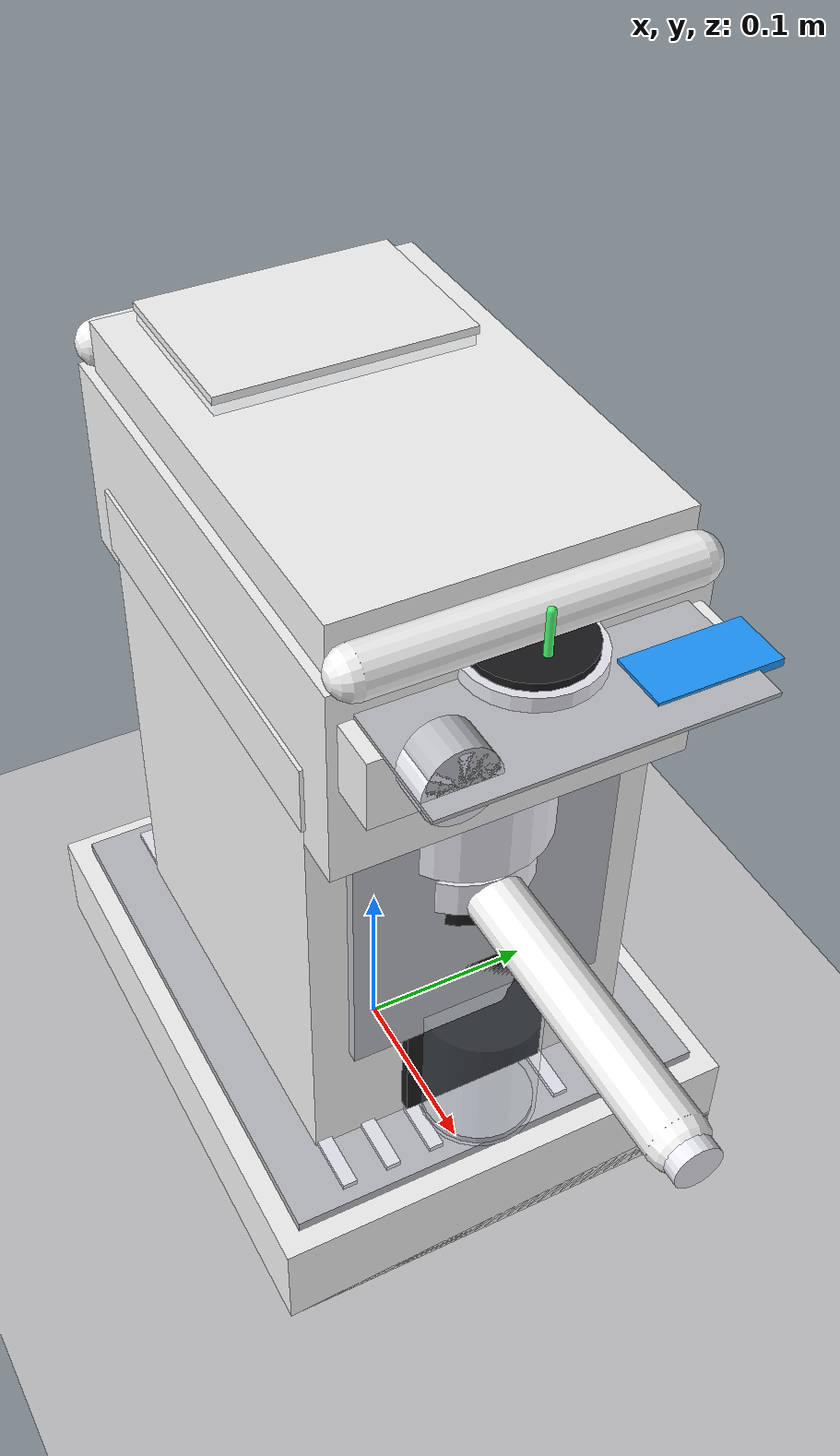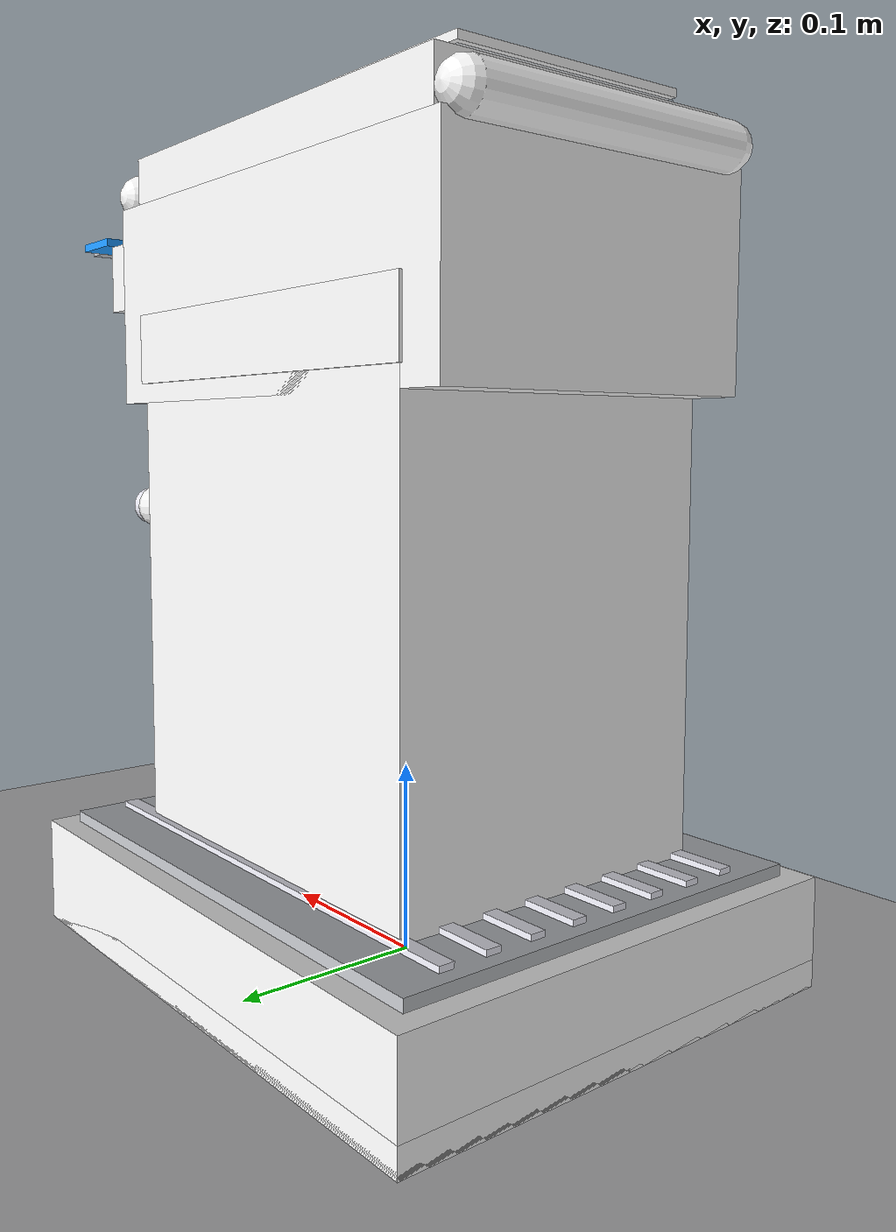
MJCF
<mujoco model="coffee_machine_hifi">

  <compiler angle="degree" coordinate="local" inertiafromgeom="true" autolimits="true"/>
  <option timestep="0.002" gravity="0 0 -9.81" integrator="RK4"/>

  <visual>
    <headlight ambient="0.14 0.14 0.16" diffuse="0.20 0.20 0.22" specular="0.10 0.10 0.10"/>
    <rgba haze="0.92 0.94 0.97 1"/>
    <global offwidth="2560" offheight="1440" fovy="42"/>
    <quality shadowsize="4096" offsamples="8"/>
    <map znear="0.01" zfar="20" shadowscale="0.4"/>
  </visual>

  <statistic extent="1.0" center="0 0 0.18"/>

  <asset>
    <texture name="tex_sky" type="skybox" builtin="gradient" rgb1="0.88 0.92 0.98" rgb2="0.22 0.28 0.38" width="2048" height="2048"/>
    <texture name="tex_floor" type="2d" builtin="checker" rgb1="0.80 0.80 0.81" rgb2="0.72 0.72 0.73" width="1024" height="1024" mark="edge" markrgb="0.55 0.55 0.56"/>
    <texture name="tex_brushed" type="2d" builtin="checker" rgb1="0.76 0.77 0.79" rgb2="0.70 0.71 0.73" width="2048" height="2048" mark="random" markrgb="0.62 0.63 0.65"/>
    <texture name="tex_white_plastic" type="2d" builtin="flat" rgb1="0.965 0.965 0.965" width="1024" height="1024"/>
    <texture name="tex_dark_plastic" type="2d" builtin="flat" rgb1="0.10 0.10 0.11" width="1024" height="1024"/>
    <texture name="tex_rubber" type="2d" builtin="checker" rgb1="0.08 0.08 0.08" rgb2="0.06 0.06 0.06" width="1024" height="1024" mark="random" markrgb="0.05 0.05 0.05"/>

    <material name="mat_floor" texture="tex_floor" texrepeat="8 8" reflectance="0.10" shininess="0.35" specular="0.15"/>
    <material name="mat_plastic_white" texture="tex_white_plastic" reflectance="0.22" shininess="0.55" specular="0.35"/>
    <material name="mat_plastic_dark" texture="tex_dark_plastic" reflectance="0.10" shininess="0.45" specular="0.25"/>
    <material name="mat_brushed_steel" texture="tex_brushed" texrepeat="6 6" reflectance="0.30" shininess="0.95" specular="0.85"/>
    <material name="mat_chrome" rgba="0.92 0.92 0.96 1" reflectance="0.80" shininess="1.0" specular="1.0"/>
    <material name="mat_rubber" texture="tex_rubber" texrepeat="6 6" reflectance="0.05" shininess="0.20" specular="0.08"/>
    <material name="mat_glass" rgba="0.80 0.88 0.95 0.18" reflectance="0.90" shininess="1.0" specular="0.90"/>
    <material name="mat_water" rgba="0.65 0.82 1.0 0.25" reflectance="0.95" shininess="1.0" specular="0.85"/>
    <material name="mat_display" rgba="0.12 0.60 1.0 1" emission="2.5" reflectance="0.02" shininess="0.9" specular="0.4"/>
    <material name="mat_indicator" rgba="0.30 1.0 0.45 1" emission="1.2" reflectance="0.0"/>
    <material name="mat_espresso" rgba="0.32 0.19 0.10 0.55" reflectance="0.0" shininess="0.0" specular="0.0"/>
  </asset>

  <default>
    <geom contype="1" conaffinity="1" friction="0.9 0.01 0.001" solimp="0.95 0.99 0.01" solref="0.02 1"/>
    <default class="visual">
      <geom contype="0" conaffinity="0" group="2"/>
    </default>
  </default>

  <worldbody>
    <light name="key" pos="1.8 -2.0 2.2" dir="-0.7 0.8 -1" diffuse="0.95 0.92 0.88" specular="0.25 0.25 0.25" castshadow="true" cutoff="45"/>
    <light name="fill" pos="-1.6 1.3 1.6" dir="0.6 -0.4 -1" diffuse="0.25 0.28 0.35" specular="0.02 0.02 0.02" castshadow="false" cutoff="90"/>
    <light name="bounce" pos="0 0 1.0" dir="0 0 -1" diffuse="0.10 0.10 0.09" specular="0 0 0" attenuation="0.4 0 0.04" castshadow="false" cutoff="120"/>

    <camera name="main" pos="0.62 -0.85 0.48" xyaxes="0.80 0.60 0  -0.25 0.33 0.91"/>

    <geom name="floor" type="plane" pos="0 0 0" size="2 2 0.1" material="mat_floor"/>

    <!-- Espresso machine overall dimensions (approx.): W=0.23m, D=0.32m, H=0.35m -->
    <body name="coffee_machine" pos="0 0 0">
      <body name="sim_state" pos="0 0 0.001">
        <body name="var_tank_level" pos="-0.07 0 0.33">
          <joint name="tank_level" type="slide" axis="0 0 1" range="0 0.08"/>
          <geom class="visual" type="box" size="0.042 0.062 0.002" pos="0 0 0" material="mat_water"/>
        </body>

        <body name="var_boiler_temp" pos="0 0 0">
          <joint name="boiler_temp" type="slide" axis="0 0 1" range="0 1"/>
          <geom class="visual" type="sphere" size="0.001" rgba="0 0 0 0"/>
        </body>

        <body name="var_pump_pressure" pos="0 0 0">
          <joint name="pump_pressure" type="slide" axis="0 0 1" range="0 1"/>
          <geom class="visual" type="sphere" size="0.001" rgba="0 0 0 0"/>
        </body>

        <body name="var_water_flow" pos="0 0 0">
          <joint name="water_flow" type="slide" axis="0 0 1" range="0 1"/>
          <geom class="visual" type="sphere" size="0.001" rgba="0 0 0 0"/>
        </body>

        <body name="var_cup_level" pos="0.12 0 0.072">
          <joint name="cup_level" type="slide" axis="0 0 1" range="0 0.035"/>
          <geom class="visual" type="cylinder" size="0.028 0.001" pos="0 0 0.0" material="mat_espresso"/>
        </body>
      </body>

      <body name="base" pos="0 0 0.0">
        <geom name="base_shell" type="box" size="0.16 0.13 0.028" pos="0 0 0.028" material="mat_plastic_white"/>
        <geom name="base_front_lip" type="box" size="0.16 0.13 0.007" pos="0 0 0.007" material="mat_plastic_white"/>
        <geom name="tray_top" type="box" size="0.148 0.118 0.004" pos="0 0 0.058" material="mat_brushed_steel"/>
        <geom class="visual" type="box" size="0.14 0.11 0.018" pos="0 0 0.038" material="mat_plastic_dark"/>

        <geom class="visual" type="box" size="0.14 0.004 0.003" pos="0 0.09 0.062" material="mat_chrome"/>
        <geom class="visual" type="box" size="0.14 0.004 0.003" pos="0 0.065 0.062" material="mat_chrome"/>
        <geom class="visual" type="box" size="0.14 0.004 0.003" pos="0 0.040 0.062" material="mat_chrome"/>
        <geom class="visual" type="box" size="0.14 0.004 0.003" pos="0 0.015 0.062" material="mat_chrome"/>
        <geom class="visual" type="box" size="0.14 0.004 0.003" pos="0 -0.010 0.062" material="mat_chrome"/>
        <geom class="visual" type="box" size="0.14 0.004 0.003" pos="0 -0.035 0.062" material="mat_chrome"/>
        <geom class="visual" type="box" size="0.14 0.004 0.003" pos="0 -0.060 0.062" material="mat_chrome"/>
        <geom class="visual" type="box" size="0.14 0.004 0.003" pos="0 -0.085 0.062" material="mat_chrome"/>

        <geom name="foot_fl" type="cylinder" size="0.018 0.006" pos="0.12 0.09 0.006" material="mat_rubber"/>
        <geom name="foot_fr" type="cylinder" size="0.018 0.006" pos="0.12 -0.09 0.006" material="mat_rubber"/>
        <geom name="foot_bl" type="cylinder" size="0.018 0.006" pos="-0.12 0.09 0.006" material="mat_rubber"/>
        <geom name="foot_br" type="cylinder" size="0.018 0.006" pos="-0.12 -0.09 0.006" material="mat_rubber"/>
      </body>

      <body name="column" pos="0 0 0.06">
        <geom name="column_shell" type="box" size="0.11 0.09 0.125" pos="0 0 0.125" material="mat_plastic_white"/>
        <geom class="visual" type="box" size="0.112 0.092 0.018" pos="0 0 0.258" material="mat_plastic_white"/>
        <geom class="visual" type="box" size="0.098 0.078 0.018" pos="0 0 0.278" material="mat_plastic_white"/>

        <geom class="visual" type="box" size="0.003 0.070 0.085" pos="0.113 0 0.155" material="mat_brushed_steel"/>
        <geom class="visual" type="box" size="0.003 0.040 0.050" pos="0.113 0 0.060" material="mat_plastic_dark"/>
        <geom class="visual" type="box" size="0.002 0.075 0.095" pos="0.108 0 0.145" material="mat_plastic_dark"/>
        <geom class="visual" type="box" size="0.010 0.075 0.002" pos="0.100 0 0.235" material="mat_chrome"/>

        <body name="boiler" pos="-0.02 0 0.15">
          <geom class="visual" type="cylinder" size="0.035 0.055" pos="0 0 0" material="mat_brushed_steel"/>
          <geom class="visual" type="cylinder" size="0.028 0.05" pos="0 0 0.01" material="mat_chrome"/>
        </body>

        <body name="pump" pos="0.05 0 0.05">
          <geom class="visual" type="cylinder" size="0.022 0.03" pos="0 0 0" material="mat_plastic_dark"/>
          <geom class="visual" type="capsule" size="0.015 0.02" pos="0 0 0.03" material="mat_brushed_steel"/>
        </body>
      </body>

      <body name="head_unit" pos="0 0 0.30">
        <geom name="head_shell" type="box" size="0.135 0.09 0.052" pos="0 0 0.042" material="mat_plastic_white"/>
        <geom class="visual" type="box" size="0.125 0.085 0.018" pos="0 0 0.102" material="mat_plastic_white"/>
        <geom class="visual" type="capsule" size="0.012 0.078" fromto="0.135 0.078 0.102  0.135 -0.078 0.102" material="mat_plastic_white"/>
        <geom class="visual" type="capsule" size="0.012 0.078" fromto="-0.135 0.078 0.102  -0.135 -0.078 0.102" material="mat_plastic_white"/>

        <body name="water_tank" pos="-0.07 0 0.07">
          <geom class="visual" type="box" size="0.045 0.065 0.055" pos="0 0 0" material="mat_glass"/>
          <geom class="visual" type="box" size="0.046 0.066 0.002" pos="0 0 0.058" material="mat_plastic_white"/>
        </body>

        <body name="control_panel" pos="0.06 0 0.06">
          <geom name="panel_face" type="box" size="0.065 0.085 0.018" pos="0.035 0 0.0" material="mat_plastic_white"/>
          <geom class="visual" type="box" size="0.058 0.078 0.001" pos="0.082 0 0.0195" material="mat_brushed_steel"/>

          <body name="pressure_gauge" pos="0.078 0 0.02">
            <geom class="visual" type="cylinder" size="0.032 0.008" pos="0 0 0" material="mat_chrome"/>
            <geom class="visual" type="cylinder" size="0.028 0.003" pos="0 0 0.009" material="mat_plastic_dark"/>
            <body name="gauge_needle" pos="0 0 0.012">
              <joint name="pressure_needle" type="hinge" axis="0 0 1" range="0 270"/>
              <geom class="visual" type="capsule" size="0.002 0.022" pos="0.012 0 0" material="mat_indicator"/>
              <geom class="visual" type="sphere" size="0.004" pos="0 0 0" material="mat_chrome"/>
            </body>
          </body>

          <body name="power_button" pos="0.03 0.035 0.02">
            <joint name="power_btn" type="slide" axis="1 0 0" range="0 0.004"/>
            <geom class="visual" type="cylinder" size="0.010 0.006" pos="0.0 0 0" euler="0 90 0" material="mat_chrome"/>
            <geom class="visual" type="cylinder" size="0.007 0.002" pos="0.004 0 0" euler="0 90 0" material="mat_indicator"/>
          </body>

          <body name="brew_button" pos="0.03 -0.035 0.02">
            <joint name="brew_btn" type="slide" axis="1 0 0" range="0 0.004"/>
            <geom class="visual" type="cylinder" size="0.010 0.006" pos="0.0 0 0" euler="0 90 0" material="mat_chrome"/>
            <geom class="visual" type="cylinder" size="0.007 0.002" pos="0.004 0 0" euler="0 90 0" material="mat_display"/>
          </body>

          <body name="steam_knob" pos="0.12 -0.06 0.02">
            <joint name="steam_knob_angle" type="hinge" axis="1 0 0" range="0 120"/>
            <geom class="visual" type="cylinder" size="0.018 0.010" pos="0 0 0" euler="0 90 0" material="mat_chrome"/>
            <geom class="visual" type="cylinder" size="0.016 0.010" pos="0 0 0.004" euler="0 90 0" material="mat_brushed_steel"/>
          </body>

          <body name="status_display" pos="0.11 0.06 0.02">
            <geom class="visual" type="box" size="0.015 0.030 0.002" pos="0 0 0" material="mat_display"/>
          </body>
        </body>

        <body name="group_head" pos="0.09 0 0.0">
          <geom class="visual" type="cylinder" size="0.045 0.020" pos="0 0 -0.03" material="mat_chrome"/>
          <geom class="visual" type="cylinder" size="0.035 0.010" pos="0 0 -0.055" material="mat_brushed_steel"/>
          <geom class="visual" type="capsule" size="0.004 0.016" pos="0.012 0.012 -0.08" euler="0 90 0" material="mat_chrome"/>
          <geom class="visual" type="capsule" size="0.004 0.016" pos="0.012 -0.012 -0.08" euler="0 90 0" material="mat_chrome"/>

          <body name="portafilter" pos="0 0 -0.07">
            <joint name="portafilter_lock" type="hinge" axis="0 0 1" range="-60 60"/>
            <geom class="visual" type="cylinder" size="0.038 0.010" pos="0 0 0" material="mat_chrome"/>
            <geom class="visual" type="cylinder" size="0.034 0.010" pos="0 0 -0.012" material="mat_plastic_dark"/>
            <body name="portafilter_handle" pos="0.10 0 -0.005">
              <geom class="visual" type="capsule" size="0.015 0.085" pos="0 0 0" euler="0 90 0" material="mat_plastic_white"/>
              <geom class="visual" type="cylinder" size="0.012 0.006" pos="0.095 0 0" euler="0 90 0" material="mat_chrome"/>
              <geom class="visual" type="cylinder" size="0.010 0.003" pos="0.083 0 0" euler="0 90 0" material="mat_brushed_steel"/>
            </body>
          </body>

          <body name="espresso_streams" pos="0.012 0 -0.08">
            <joint name="stream_extend" type="slide" axis="0 0 -1" range="0 0.11"/>
            <geom class="visual" type="cylinder" size="0.0018 0.055" pos="0 0.012 -0.055" material="mat_espresso"/>
            <geom class="visual" type="cylinder" size="0.0018 0.055" pos="0 -0.012 -0.055" material="mat_espresso"/>
          </body>
        </body>
      </body>

      <body name="cup" pos="0.12 0 0.062">
        <geom class="visual" type="cylinder" size="0.032 0.040" pos="0 0 0.04" material="mat_glass"/>
        <geom class="visual" type="cylinder" size="0.030 0.002" pos="0 0 0.002" material="mat_brushed_steel"/>
      </body>
    </body>
  </worldbody>

  <actuator>
    <position name="act_tank_level" joint="tank_level" kp="800" ctrlrange="0 0.08"/>
    <position name="act_boiler_temp" joint="boiler_temp" kp="400" ctrlrange="0 1"/>
    <position name="act_pump_pressure" joint="pump_pressure" kp="400" ctrlrange="0 1"/>
    <position name="act_water_flow" joint="water_flow" kp="400" ctrlrange="0 1"/>
    <position name="act_cup_level" joint="cup_level" kp="800" ctrlrange="0 0.035"/>

    <position name="act_pressure_needle" joint="pressure_needle" kp="200" ctrlrange="0 270"/>
    <position name="act_power_btn" joint="power_btn" kp="1500" ctrlrange="0 0.004"/>
    <position name="act_brew_btn" joint="brew_btn" kp="1500" ctrlrange="0 0.004"/>
    <position name="act_steam_knob" joint="steam_knob_angle" kp="250" ctrlrange="0 120"/>
    <position name="act_portafilter" joint="portafilter_lock" kp="250" ctrlrange="-60 60"/>
    <position name="act_stream" joint="stream_extend" kp="1200" ctrlrange="0 0.11"/>
  </actuator>

  <!-- Joint order (nq=11):
       tank_level, boiler_temp, pump_pressure, water_flow, cup_level,
       pressure_needle, power_btn, brew_btn, steam_knob_angle,
       portafilter_lock, stream_extend
  -->
  <keyframe>
    <!-- ctrl order (nu=11) 与 actuator 声明顺序一致 -->
    <key name="idle"
         qpos="0.020 0.10 0.00 0.00 0.000  0   0.000 0.000 0   0   0.000"
         ctrl="0.020 0.10 0.00 0.00 0.000  0   0.000 0.000 0   0   0.000"/>
    <key name="fill_water"
         qpos="0.070 0.10 0.00 0.00 0.000  0   0.004 0.000 0   0   0.000"
         ctrl="0.070 0.10 0.00 0.00 0.000  0   0.004 0.000 0   0   0.000"/>
    <key name="heat_up"
         qpos="0.070 0.85 0.10 0.00 0.000  35  0.004 0.000 0   0   0.000"
         ctrl="0.070 0.85 0.10 0.00 0.000  35  0.004 0.000 0   0   0.000"/>
    <key name="brew"
         qpos="0.065 0.90 0.92 0.70 0.030  210 0.004 0.004 10  0   0.110"
         ctrl="0.065 0.90 0.92 0.70 0.030  210 0.004 0.004 10  0   0.110"/>
    <key name="done"
         qpos="0.060 0.85 0.05 0.00 0.035  10  0.004 0.000 0   0   0.000"
         ctrl="0.060 0.85 0.05 0.00 0.035  10  0.004 0.000 0   0   0.000"/>
  </keyframe>
</mujoco>
